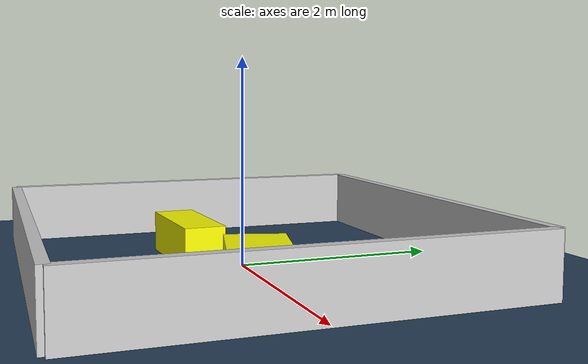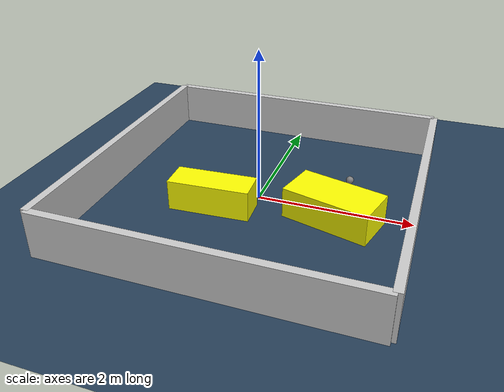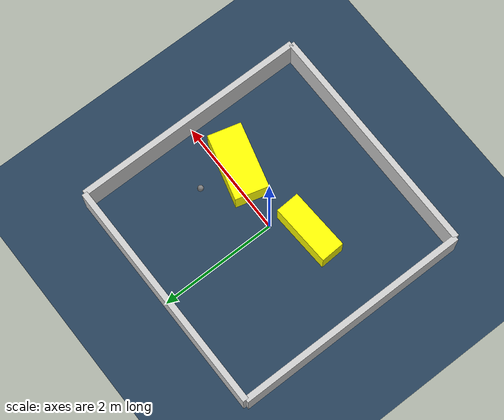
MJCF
<?xml version="1.0" ?>
<mujoco model="generated_environment">
  <option timestep="0.01" integrator="RK4" cone="elliptic"/>
  <default>
    <geom density="1"/>
  </default>
  <asset>
    <texture builtin="gradient" height="3072" rgb1="0.3 0.5 0.7" rgb2="0 0 0" type="skybox" width="512"/>
    <texture builtin="checker" height="300" mark="edge" markrgb="0.8 0.8 0.8" name="groundplane" rgb1="0.2 0.3 0.4" rgb2="0.1 0.2 0.3" type="2d" width="300"/>
    <material name="groundplane" reflectance="0.2" texrepeat="5 5" texture="groundplane" texuniform="true"/>
    <material name="robot" rgba="0.0 1.0 0.0 1"/>
  </asset>
  <worldbody>
    <light dir="0 0 -1" directional="true" pos="0 0 1.5"/>
    <geom condim="4" friction="1.0 0.005 0.001" material="groundplane" name="floor" size="0 0 0.05" type="plane"/>
    <body name="walls">
      <geom name="wall_1" condim="4" pos="-2.0 0.0 0.3" rgba="0.800000011920929 0.800000011920929 0.800000011920929 1.0" size="0.05 2.0 0.3" type="box"/>
      <geom name="wall_2" condim="4" pos="2.0 0.0 0.3" rgba="0.800000011920929 0.800000011920929 0.800000011920929 1.0" size="0.05 2.0 0.3" type="box"/>
      <geom name="wall_3" condim="4" pos="0.0 -2.0 0.3" rgba="0.800000011920929 0.800000011920929 0.800000011920929 1.0" size="2.0 0.05 0.3" type="box"/>
      <geom name="wall_4" condim="4" pos="0.0 2.0 0.3" rgba="0.800000011920929 0.800000011920929 0.800000011920929 1.0" size="2.0 0.05 0.3" type="box"/>
    </body>
    <body name="robot">
      <joint name="joint_x" type="slide" pos="0 0 0" axis="1 0 0"/>
      <joint name="joint_y" type="slide" pos="0 0 0" axis="0 1 0"/>
      <geom name="robot" type="sphere" pos="1.0946789849096343 0.49839162272665316 0.2" size="0.05" mass="5." friction="1.0 0.005 0.0001" condim="4"/>
      <site name="sensor_ball"/>
    </body>
    <body name="obstacle_1_movable">
      <geom name="obstacle_1_movable" condim="4" pos="1.0350429077432013 -0.19268772966416958 0.2" euler="0 0 345.0272697338705" friction="1.0 0.005 0.001" rgba="1 1 0 1" size="0.5662334925231014 0.28446082436661346 0.2" type="box" mass="0.1"/>
      <joint type="free"/>
    </body>
    <body name="obstacle_2_movable">
      <geom name="obstacle_2_movable" condim="4" pos="-0.4800390686184426 -0.40646956284527525 0.2" euler="0 0 182.9756646517906" friction="1.0 0.005 0.001" rgba="1 1 0 1" size="0.5270238684438615 0.20214376633466907 0.2" type="box" mass="0.1"/>
      <joint type="free"/>
    </body>
  </worldbody>
  <actuator>
    <motor name="actuator_x" joint="joint_x" gear="1" ctrlrange="-1 1"/>
    <motor name="actuator_y" joint="joint_y" gear="1" ctrlrange="-1 1"/>
  </actuator>
</mujoco>
